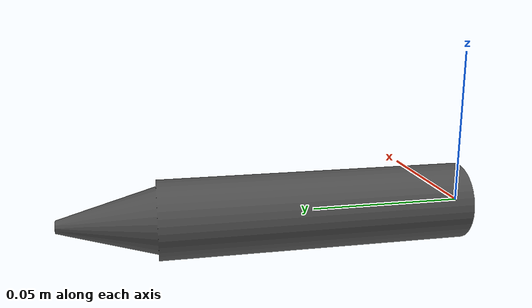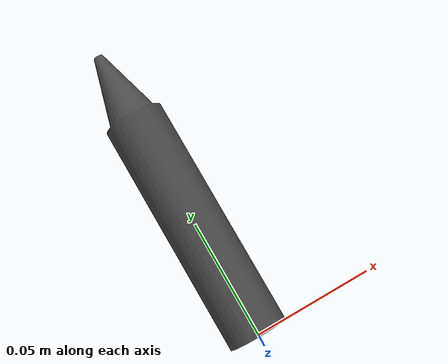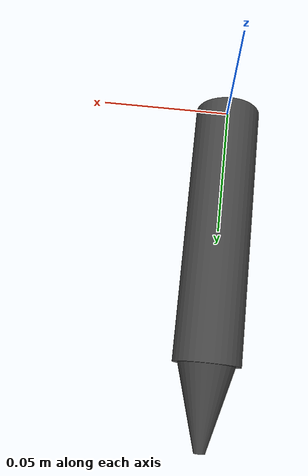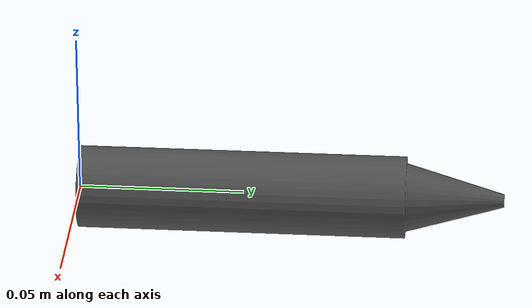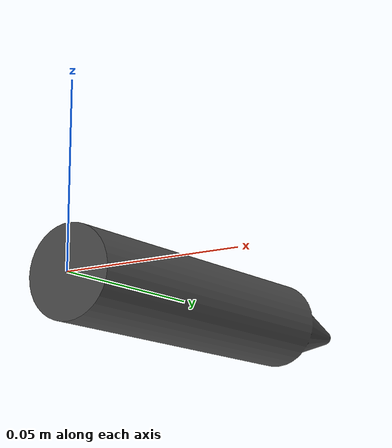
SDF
<?xml version="1.0"?>
<sdf version="1.7">
  <model name="leak_detector">

    <link name="tool">
      <pose>0.0 0.0 0.0 0.0 0.0 0.0</pose>
      <inertial>
        <pose>0.0 0.05 0.0 0.0 0.0 0.0</pose>
        <inertia>
          <ixx>0.001</ixx>
          <ixy>0.0</ixy>
          <ixz>0.0</ixz>
          <iyy>0.001</iyy>
          <iyz>0.0</iyz>
          <izz>0.001</izz>
        </inertia>
        <mass>0.05</mass>
      </inertial>
      <visual name="visual">
        <geometry>
          <mesh>
            <uri>model://leak_detector/meshes/ultrasonic_detector.stl</uri>
            <scale>0.001 0.001 0.001</scale>
          </mesh>
        </geometry>
        <material>
          <script>
            <uri>file://media/materials/scripts/gazebo.material</uri>
            <name>Gazebo/DarkGrey</name>
          </script>
        </material>
      </visual>
      <collision name="collision">
        <geometry>
          <mesh>
            <uri>model://leak_detector/meshes/ultrasonic_detector.stl</uri>
            <scale>0.001 0.001 0.001</scale>
          </mesh>
        </geometry>
      </collision>
    </link>

  </model>
</sdf>
